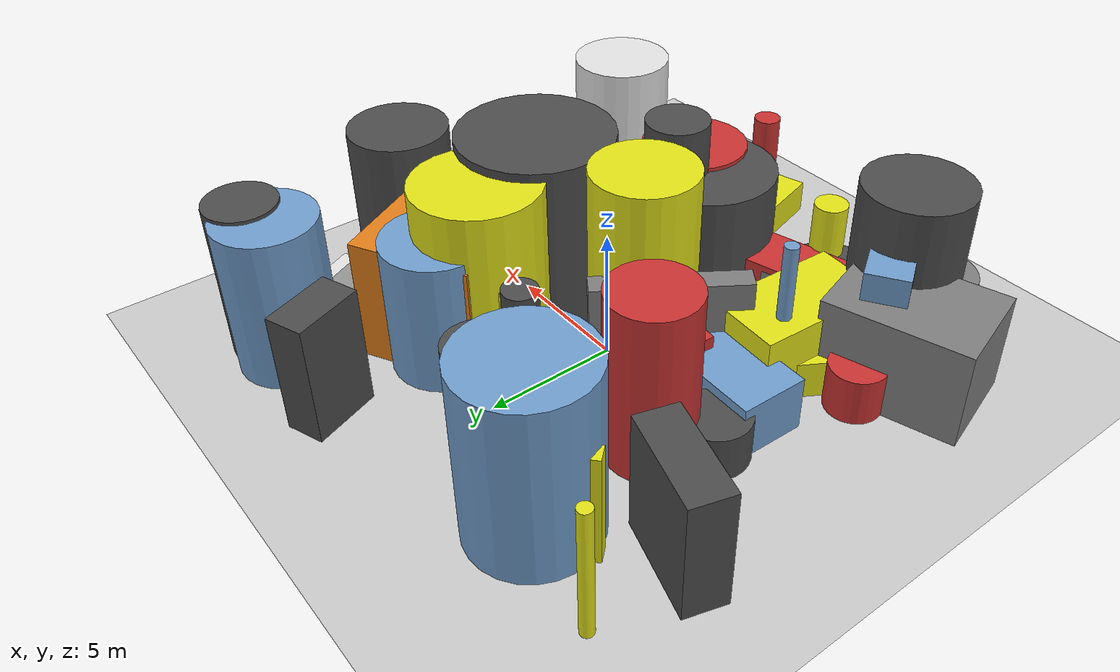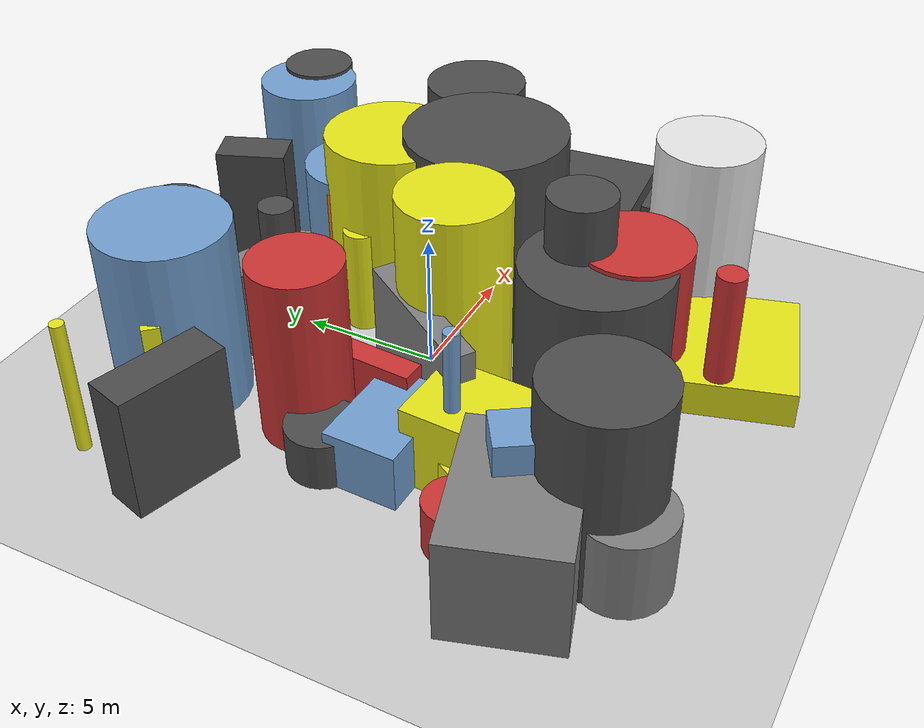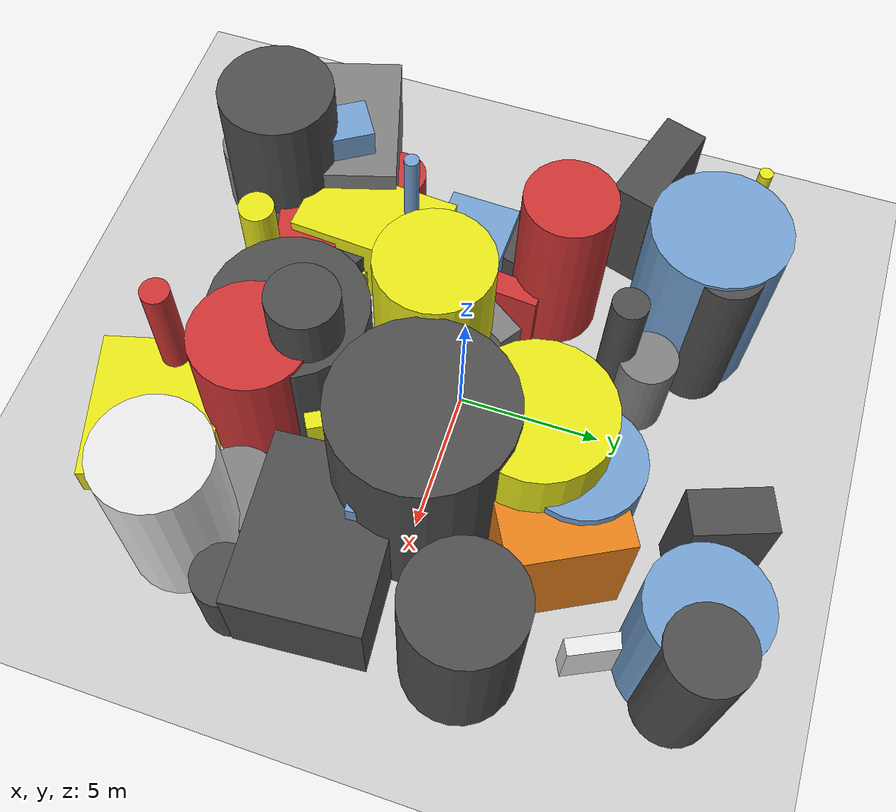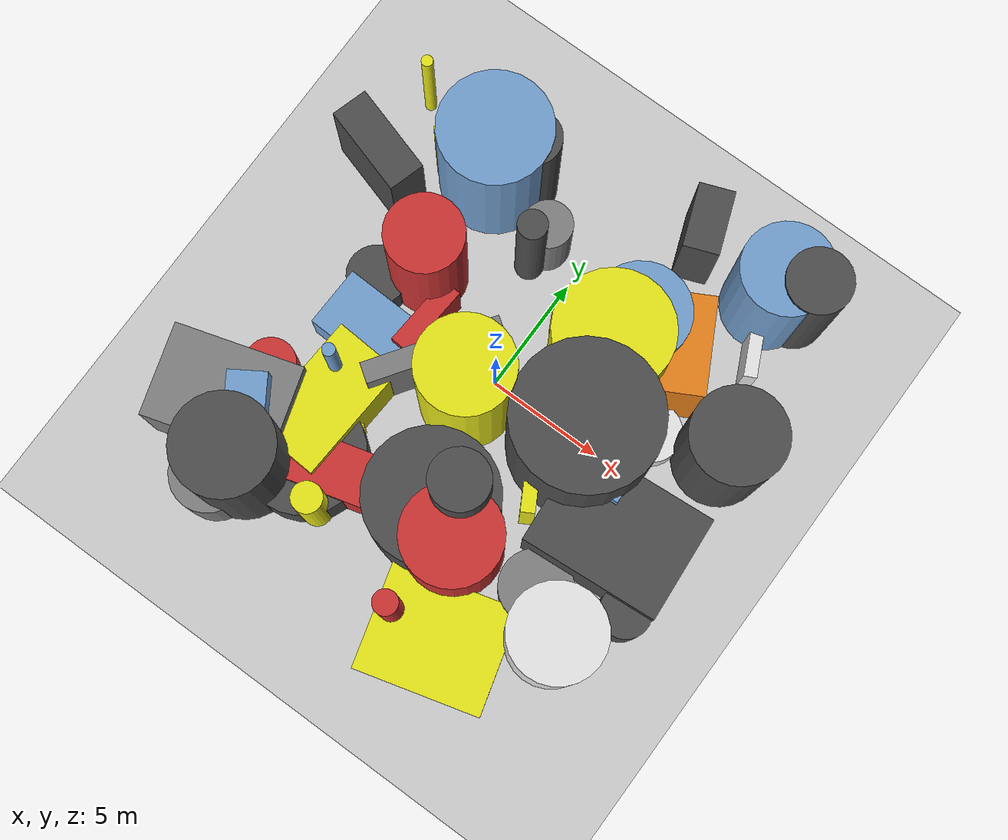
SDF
<?xml version='1.0'?>
<sdf version='1.6'>
  <world name='default'>
    <!-- Sun light -->
    <light name='sun' type='directional'>
      <cast_shadows>1</cast_shadows>
      <pose>0 0 10 0 0 0</pose>
      <diffuse>0.8 0.8 0.8 1</diffuse>
      <specular>0.2 0.2 0.2 1</specular>
      <attenuation>
        <range>1000</range>
        <constant>0.9</constant>
        <linear>0.01</linear>
        <quadratic>0.001</quadratic>
      </attenuation>
      <direction>-0.5 0.1 -0.9</direction>
    </light>

    <!-- Ground plane -->
    <model name='ground_plane'>
      <static>1</static>
      <link name='link'>
        <collision name='collision'>
          <geometry>
            <plane>
              <normal>0 0 1</normal>
              <size>100 100</size>
            </plane>
          </geometry>
          <surface>
            <contact>
              <collide_bitmask>65535</collide_bitmask>
              <ode/>
            </contact>
            <friction>
              <ode>
                <mu>100</mu>
                <mu2>50</mu2>
              </ode>
              <torsional><ode/></torsional>
            </friction>
            <bounce/>
          </surface>
          <max_contacts>10</max_contacts>
        </collision>
        <visual name='visual'>
          <cast_shadows>0</cast_shadows>
          <geometry>
            <plane>
              <normal>0 0 1</normal>
              <size>100 100</size>
            </plane>
          </geometry>
          <material>
            <script>
              <uri>file://media/materials/scripts/gazebo.material</uri>
              <n>Gazebo/Grey</n>
            </script>
          </material>
        </visual>
      </link>
    </model>

    <!-- Environment -->
    <magnetic_field>6e-06 2.3e-05 -4.2e-05</magnetic_field>
    <atmosphere type='adiabatic'/>
    <physics name='default_physics' default='0' type='ode'>
      <gravity>0 0 -9.8</gravity>
      <max_step_size>0.004</max_step_size>
      <real_time_factor>1</real_time_factor>
      <real_time_update_rate>250</real_time_update_rate>
    </physics>
    <scene>
      <ambient>0.4 0.4 0.4 1</ambient>
      <background>0.7 0.7 0.7 1</background>
      <shadows>1</shadows>
    </scene>
    <wind/>
    <spherical_coordinates>
      <surface_model>EARTH_WGS84</surface_model>
      <latitude_deg>0</latitude_deg>
      <longitude_deg>0</longitude_deg>
      <elevation>0</elevation>
      <heading_deg>0</heading_deg>
    </spherical_coordinates>

    <!-- ============ OBSTACLES (48) ============ -->
    <model name='obs_00'>
      <static>1</static>
      <link name='link'>
        <visual name='visual'>
          <geometry>
            <cylinder>
              <radius>1.9132</radius>
              <length>6.3601</length>
            </cylinder>
          </geometry>
          <material>
            <script>
              <n>Gazebo/DarkGrey</n>
              <uri>file://media/materials/scripts/gazebo.material</uri>
            </script>
            <ambient>0.3 0.3 0.3 1</ambient>
          </material>
        </visual>
        <collision name='collision'>
          <geometry>
            <cylinder>
              <radius>1.9132</radius>
              <length>6.3601</length>
            </cylinder>
          </geometry>
          <max_contacts>10</max_contacts>
          <surface>
            <contact><ode/></contact>
            <bounce/>
            <friction>
              <ode><mu>1</mu><mu2>1</mu2></ode>
              <torsional><ode/></torsional>
            </friction>
          </surface>
        </collision>
      </link>
      <pose>9.0717 2.7719 3.1800 0 0 1.2000</pose>
    </model>

    <model name='obs_01'>
      <static>1</static>
      <link name='link'>
        <visual name='visual'>
          <geometry>
            <cylinder>
              <radius>0.9991</radius>
              <length>3.4401</length>
            </cylinder>
          </geometry>
          <material>
            <script>
              <n>Gazebo/Grey</n>
              <uri>file://media/materials/scripts/gazebo.material</uri>
            </script>
            <ambient>0.5 0.5 0.5 1</ambient>
          </material>
        </visual>
        <collision name='collision'>
          <geometry>
            <cylinder>
              <radius>0.9991</radius>
              <length>3.4401</length>
            </cylinder>
          </geometry>
          <max_contacts>10</max_contacts>
          <surface>
            <contact><ode/></contact>
            <bounce/>
            <friction>
              <ode><mu>1</mu><mu2>1</mu2></ode>
              <torsional><ode/></torsional>
            </friction>
          </surface>
        </collision>
      </link>
      <pose>-1.7098 5.8542 1.7201 0 0 2.5389</pose>
    </model>

    <model name='obs_02'>
      <static>1</static>
      <link name='link'>
        <visual name='visual'>
          <geometry>
            <cylinder>
              <radius>1.9798</radius>
              <length>5.1851</length>
            </cylinder>
          </geometry>
          <material>
            <script>
              <n>Gazebo/Blue</n>
              <uri>file://media/materials/scripts/gazebo.material</uri>
            </script>
            <ambient>0.447 0.624 0.812 1</ambient>
          </material>
        </visual>
        <collision name='collision'>
          <geometry>
            <cylinder>
              <radius>1.9798</radius>
              <length>5.1851</length>
            </cylinder>
          </geometry>
          <max_contacts>10</max_contacts>
          <surface>
            <contact><ode/></contact>
            <bounce/>
            <friction>
              <ode><mu>1</mu><mu2>1</mu2></ode>
              <torsional><ode/></torsional>
            </friction>
          </surface>
        </collision>
      </link>
      <pose>3.3883 4.7418 2.5925 0 0 0.7329</pose>
    </model>

    <model name='obs_03'>
      <static>1</static>
      <link name='link'>
        <visual name='visual'>
          <geometry>
            <cylinder>
              <radius>2.6751</radius>
              <length>5.1760</length>
            </cylinder>
          </geometry>
          <material>
            <script>
              <n>Gazebo/DarkGrey</n>
              <uri>file://media/materials/scripts/gazebo.material</uri>
            </script>
            <ambient>0.3 0.3 0.3 1</ambient>
          </material>
        </visual>
        <collision name='collision'>
          <geometry>
            <cylinder>
              <radius>2.6751</radius>
              <length>5.1760</length>
            </cylinder>
          </geometry>
          <max_contacts>10</max_contacts>
          <surface>
            <contact><ode/></contact>
            <bounce/>
            <friction>
              <ode><mu>1</mu><mu2>1</mu2></ode>
              <torsional><ode/></torsional>
            </friction>
          </surface>
        </collision>
      </link>
      <pose>1.1378 -5.6228 2.5880 0 0 2.2839</pose>
    </model>

    <model name='obs_04'>
      <static>1</static>
      <link name='link'>
        <visual name='visual'>
          <geometry>
            <cylinder>
              <radius>2.2961</radius>
              <length>6.7116</length>
            </cylinder>
          </geometry>
          <material>
            <script>
              <n>Gazebo/Blue</n>
              <uri>file://media/materials/scripts/gazebo.material</uri>
            </script>
            <ambient>0.447 0.624 0.812 1</ambient>
          </material>
        </visual>
        <collision name='collision'>
          <geometry>
            <cylinder>
              <radius>2.2961</radius>
              <length>6.7116</length>
            </cylinder>
          </geometry>
          <max_contacts>10</max_contacts>
          <surface>
            <contact><ode/></contact>
            <bounce/>
            <friction>
              <ode><mu>1</mu><mu2>1</mu2></ode>
              <torsional><ode/></torsional>
            </friction>
          </surface>
        </collision>
      </link>
      <pose>-5.0901 6.9072 3.3558 0 0 3.0854</pose>
    </model>

    <model name='obs_05'>
      <static>1</static>
      <link name='link'>
        <visual name='visual'>
          <geometry>
            <cylinder>
              <radius>2.0256</radius>
              <length>5.3318</length>
            </cylinder>
          </geometry>
          <material>
            <script>
              <n>Gazebo/Red</n>
              <uri>file://media/materials/scripts/gazebo.material</uri>
            </script>
            <ambient>0.8 0.2 0.2 1</ambient>
          </material>
        </visual>
        <collision name='collision'>
          <geometry>
            <cylinder>
              <radius>2.0256</radius>
              <length>5.3318</length>
            </cylinder>
          </geometry>
          <max_contacts>10</max_contacts>
          <surface>
            <contact><ode/></contact>
            <bounce/>
            <friction>
              <ode><mu>1</mu><mu2>1</mu2></ode>
              <torsional><ode/></torsional>
            </friction>
          </surface>
        </collision>
      </link>
      <pose>2.6268 -6.3592 2.6659 0 0 2.4939</pose>
    </model>

    <model name='obs_06'>
      <static>1</static>
      <link name='link'>
        <visual name='visual'>
          <geometry>
            <cylinder>
              <radius>1.0463</radius>
              <length>1.8014</length>
            </cylinder>
          </geometry>
          <material>
            <script>
              <n>Gazebo/Red</n>
              <uri>file://media/materials/scripts/gazebo.material</uri>
            </script>
            <ambient>0.8 0.2 0.2 1</ambient>
          </material>
        </visual>
        <collision name='collision'>
          <geometry>
            <cylinder>
              <radius>1.0463</radius>
              <length>1.8014</length>
            </cylinder>
          </geometry>
          <max_contacts>10</max_contacts>
          <surface>
            <contact><ode/></contact>
            <bounce/>
            <friction>
              <ode><mu>1</mu><mu2>1</mu2></ode>
              <torsional><ode/></torsional>
            </friction>
          </surface>
        </collision>
      </link>
      <pose>-7.5041 -4.8734 0.9007 0 0 2.7170</pose>
    </model>

    <model name='obs_07'>
      <static>1</static>
      <link name='link'>
        <visual name='visual'>
          <geometry>
            <box>
              <size>2.7126 0.8065 4.6702</size>
            </box>
          </geometry>
          <material>
            <script>
              <n>Gazebo/Blue</n>
              <uri>file://media/materials/scripts/gazebo.material</uri>
            </script>
            <ambient>0.447 0.624 0.812 1</ambient>
          </material>
        </visual>
        <collision name='collision'>
          <geometry>
            <box>
              <size>2.7126 0.8065 4.6702</size>
            </box>
          </geometry>
          <max_contacts>10</max_contacts>
          <surface>
            <contact><ode/></contact>
            <bounce/>
            <friction>
              <ode><mu>1</mu><mu2>1</mu2></ode>
              <torsional><ode/></torsional>
            </friction>
          </surface>
        </collision>
      </link>
      <pose>5.3183 0.3067 2.3351 0 0 1.6359</pose>
    </model>

    <model name='obs_08'>
      <static>1</static>
      <link name='link'>
        <visual name='visual'>
          <geometry>
            <box>
              <size>4.4605 3.2454 1.4618</size>
            </box>
          </geometry>
          <material>
            <script>
              <n>Gazebo/Yellow</n>
              <uri>file://media/materials/scripts/gazebo.material</uri>
            </script>
            <ambient>0.9 0.9 0.1 1</ambient>
          </material>
        </visual>
        <collision name='collision'>
          <geometry>
            <box>
              <size>4.4605 3.2454 1.4618</size>
            </box>
          </geometry>
          <max_contacts>10</max_contacts>
          <surface>
            <contact><ode/></contact>
            <bounce/>
            <friction>
              <ode><mu>1</mu><mu2>1</mu2></ode>
              <torsional><ode/></torsional>
            </friction>
          </surface>
        </collision>
      </link>
      <pose>-5.5087 -5.7768 0.7309 0 0 1.0288</pose>
    </model>

    <model name='obs_09'>
      <static>1</static>
      <link name='link'>
        <visual name='visual'>
          <geometry>
            <cylinder>
              <radius>1.2100</radius>
              <length>7.2062</length>
            </cylinder>
          </geometry>
          <material>
            <script>
              <n>Gazebo/DarkGrey</n>
              <uri>file://media/materials/scripts/gazebo.material</uri>
            </script>
            <ambient>0.3 0.3 0.3 1</ambient>
          </material>
        </visual>
        <collision name='collision'>
          <geometry>
            <cylinder>
              <radius>1.2100</radius>
              <length>7.2062</length>
            </cylinder>
          </geometry>
          <max_contacts>10</max_contacts>
          <surface>
            <contact><ode/></contact>
            <bounce/>
            <friction>
              <ode><mu>1</mu><mu2>1</mu2></ode>
              <torsional><ode/></torsional>
            </friction>
          </surface>
        </collision>
      </link>
      <pose>1.8151 -4.7097 3.6031 0 0 0.0002</pose>
    </model>

    <model name='obs_10'>
      <static>1</static>
      <link name='link'>
        <visual name='visual'>
          <geometry>
            <box>
              <size>5.3669 2.1381 2.5916</size>
            </box>
          </geometry>
          <material>
            <script>
              <n>Gazebo/Red</n>
              <uri>file://media/materials/scripts/gazebo.material</uri>
            </script>
            <ambient>0.8 0.2 0.2 1</ambient>
          </material>
        </visual>
        <collision name='collision'>
          <geometry>
            <box>
              <size>5.3669 2.1381 2.5916</size>
            </box>
          </geometry>
          <max_contacts>10</max_contacts>
          <surface>
            <contact><ode/></contact>
            <bounce/>
            <friction>
              <ode><mu>1</mu><mu2>1</mu2></ode>
              <torsional><ode/></torsional>
            </friction>
          </surface>
        </collision>
      </link>
      <pose>-2.1734 -6.6176 1.2958 0 0 0.2593</pose>
    </model>

    <model name='obs_11'>
      <static>1</static>
      <link name='link'>
        <visual name='visual'>
          <geometry>
            <cylinder>
              <radius>2.9413</radius>
              <length>7.2574</length>
            </cylinder>
          </geometry>
          <material>
            <script>
              <n>Gazebo/DarkGrey</n>
              <uri>file://media/materials/scripts/gazebo.material</uri>
            </script>
            <ambient>0.3 0.3 0.3 1</ambient>
          </material>
        </visual>
        <collision name='collision'>
          <geometry>
            <cylinder>
              <radius>2.9413</radius>
              <length>7.2574</length>
            </cylinder>
          </geometry>
          <max_contacts>10</max_contacts>
          <surface>
            <contact><ode/></contact>
            <bounce/>
            <friction>
              <ode><mu>1</mu><mu2>1</mu2></ode>
              <torsional><ode/></torsional>
            </friction>
          </surface>
        </collision>
      </link>
      <pose>4.1713 -0.0751 3.6287 0 0 2.4630</pose>
    </model>

    <model name='obs_12'>
      <static>1</static>
      <link name='link'>
        <visual name='visual'>
          <geometry>
            <cylinder>
              <radius>0.2415</radius>
              <length>5.0220</length>
            </cylinder>
          </geometry>
          <material>
            <script>
              <n>Gazebo/Yellow</n>
              <uri>file://media/materials/scripts/gazebo.material</uri>
            </script>
            <ambient>0.9 0.9 0.1 1</ambient>
          </material>
        </visual>
        <collision name='collision'>
          <geometry>
            <cylinder>
              <radius>0.2415</radius>
              <length>5.0220</length>
            </cylinder>
          </geometry>
          <max_contacts>10</max_contacts>
          <surface>
            <contact><ode/></contact>
            <bounce/>
            <friction>
              <ode><mu>1</mu><mu2>1</mu2></ode>
              <torsional><ode/></torsional>
            </friction>
          </surface>
        </collision>
      </link>
      <pose>-9.1711 7.9914 2.5110 0 0 2.2519</pose>
    </model>

    <model name='obs_13'>
      <static>1</static>
      <link name='link'>
        <visual name='visual'>
          <geometry>
            <cylinder>
              <radius>1.8679</radius>
              <length>5.9901</length>
            </cylinder>
          </geometry>
          <material>
            <script>
              <n>Gazebo/Blue</n>
              <uri>file://media/materials/scripts/gazebo.material</uri>
            </script>
            <ambient>0.447 0.624 0.812 1</ambient>
          </material>
        </visual>
        <collision name='collision'>
          <geometry>
            <cylinder>
              <radius>1.8679</radius>
              <length>5.9901</length>
            </cylinder>
          </geometry>
          <max_contacts>10</max_contacts>
          <surface>
            <contact><ode/></contact>
            <bounce/>
            <friction>
              <ode><mu>1</mu><mu2>1</mu2></ode>
              <torsional><ode/></torsional>
            </friction>
          </surface>
        </collision>
      </link>
      <pose>6.9541 9.1423 2.9950 0 0 2.7705</pose>
    </model>

    <model name='obs_14'>
      <static>1</static>
      <link name='link'>
        <visual name='visual'>
          <geometry>
            <cylinder>
              <radius>1.9580</radius>
              <length>7.5261</length>
            </cylinder>
          </geometry>
          <material>
            <script>
              <n>Gazebo/Yellow</n>
              <uri>file://media/materials/scripts/gazebo.material</uri>
            </script>
            <ambient>0.9 0.9 0.1 1</ambient>
          </material>
        </visual>
        <collision name='collision'>
          <geometry>
            <cylinder>
              <radius>1.9580</radius>
              <length>7.5261</length>
            </cylinder>
          </geometry>
          <max_contacts>10</max_contacts>
          <surface>
            <contact><ode/></contact>
            <bounce/>
            <friction>
              <ode><mu>1</mu><mu2>1</mu2></ode>
              <torsional><ode/></torsional>
            </friction>
          </surface>
        </collision>
      </link>
      <pose>-0.4944 -1.2290 3.7630 0 0 0.6281</pose>
    </model>

    <model name='obs_15'>
      <static>1</static>
      <link name='link'>
        <visual name='visual'>
          <geometry>
            <cylinder>
              <radius>0.6340</radius>
              <length>4.3928</length>
            </cylinder>
          </geometry>
          <material>
            <script>
              <n>Gazebo/Yellow</n>
              <uri>file://media/materials/scripts/gazebo.material</uri>
            </script>
            <ambient>0.9 0.9 0.1 1</ambient>
          </material>
        </visual>
        <collision name='collision'>
          <geometry>
            <cylinder>
              <radius>0.6340</radius>
              <length>4.3928</length>
            </cylinder>
          </geometry>
          <max_contacts>10</max_contacts>
          <surface>
            <contact><ode/></contact>
            <bounce/>
            <friction>
              <ode><mu>1</mu><mu2>1</mu2></ode>
              <torsional><ode/></torsional>
            </friction>
          </surface>
        </collision>
      </link>
      <pose>-2.6823 -8.3920 2.1964 0 0 2.5491</pose>
    </model>

    <model name='obs_16'>
      <static>1</static>
      <link name='link'>
        <visual name='visual'>
          <geometry>
            <cylinder>
              <radius>1.0366</radius>
              <length>3.0106</length>
            </cylinder>
          </geometry>
          <material>
            <script>
              <n>Gazebo/DarkGrey</n>
              <uri>file://media/materials/scripts/gazebo.material</uri>
            </script>
            <ambient>0.3 0.3 0.3 1</ambient>
          </material>
        </visual>
        <collision name='collision'>
          <geometry>
            <cylinder>
              <radius>1.0366</radius>
              <length>3.0106</length>
            </cylinder>
          </geometry>
          <max_contacts>10</max_contacts>
          <surface>
            <contact><ode/></contact>
            <bounce/>
            <friction>
              <ode><mu>1</mu><mu2>1</mu2></ode>
              <torsional><ode/></torsional>
            </friction>
          </surface>
        </collision>
      </link>
      <pose>9.5298 -4.6609 1.5053 0 0 2.6575</pose>
    </model>

    <model name='obs_17'>
      <static>1</static>
      <link name='link'>
        <visual name='visual'>
          <geometry>
            <box>
              <size>3.7772 2.5897 2.1017</size>
            </box>
          </geometry>
          <material>
            <script>
              <n>Gazebo/Blue</n>
              <uri>file://media/materials/scripts/gazebo.material</uri>
            </script>
            <ambient>0.447 0.624 0.812 1</ambient>
          </material>
        </visual>
        <collision name='collision'>
          <geometry>
            <box>
              <size>3.7772 2.5897 2.1017</size>
            </box>
          </geometry>
          <max_contacts>10</max_contacts>
          <surface>
            <contact><ode/></contact>
            <bounce/>
            <friction>
              <ode><mu>1</mu><mu2>1</mu2></ode>
              <torsional><ode/></torsional>
            </friction>
          </surface>
        </collision>
      </link>
      <pose>-5.2185 -1.3576 1.0509 0 0 3.1091</pose>
    </model>

    <model name='obs_18'>
      <static>1</static>
      <link name='link'>
        <visual name='visual'>
          <geometry>
            <cylinder>
              <radius>0.6025</radius>
              <length>6.1146</length>
            </cylinder>
          </geometry>
          <material>
            <script>
              <n>Gazebo/DarkGrey</n>
              <uri>file://media/materials/scripts/gazebo.material</uri>
            </script>
            <ambient>0.3 0.3 0.3 1</ambient>
          </material>
        </visual>
        <collision name='collision'>
          <geometry>
            <cylinder>
              <radius>0.6025</radius>
              <length>6.1146</length>
            </cylinder>
          </geometry>
          <max_contacts>10</max_contacts>
          <surface>
            <contact><ode/></contact>
            <bounce/>
            <friction>
              <ode><mu>1</mu><mu2>1</mu2></ode>
              <torsional><ode/></torsional>
            </friction>
          </surface>
        </collision>
      </link>
      <pose>-1.8068 4.8117 3.0573 0 0 0.2689</pose>
    </model>

    <model name='obs_19'>
      <static>1</static>
      <link name='link'>
        <visual name='visual'>
          <geometry>
            <cylinder>
              <radius>0.2663</radius>
              <length>5.9310</length>
            </cylinder>
          </geometry>
          <material>
            <script>
              <n>Gazebo/Blue</n>
              <uri>file://media/materials/scripts/gazebo.material</uri>
            </script>
            <ambient>0.447 0.624 0.812 1</ambient>
          </material>
        </visual>
        <collision name='collision'>
          <geometry>
            <cylinder>
              <radius>0.2663</radius>
              <length>5.9310</length>
            </cylinder>
          </geometry>
          <max_contacts>10</max_contacts>
          <surface>
            <contact><ode/></contact>
            <bounce/>
            <friction>
              <ode><mu>1</mu><mu2>1</mu2></ode>
              <torsional><ode/></torsional>
            </friction>
          </surface>
        </collision>
      </link>
      <pose>-5.1412 -3.5510 2.9655 0 0 2.9904</pose>
    </model>

    <model name='obs_20'>
      <static>1</static>
      <link name='link'>
        <visual name='visual'>
          <geometry>
            <cylinder>
              <radius>1.5517</radius>
              <length>2.8271</length>
            </cylinder>
          </geometry>
          <material>
            <script>
              <n>Gazebo/Grey</n>
              <uri>file://media/materials/scripts/gazebo.material</uri>
            </script>
            <ambient>0.5 0.5 0.5 1</ambient>
          </material>
        </visual>
        <collision name='collision'>
          <geometry>
            <cylinder>
              <radius>1.5517</radius>
              <length>2.8271</length>
            </cylinder>
          </geometry>
          <max_contacts>10</max_contacts>
          <surface>
            <contact><ode/></contact>
            <bounce/>
            <friction>
              <ode><mu>1</mu><mu2>1</mu2></ode>
              <torsional><ode/></torsional>
            </friction>
          </surface>
        </collision>
      </link>
      <pose>-6.5733 -9.8452 1.4136 0 0 0.5613</pose>
    </model>

    <model name='obs_21'>
      <static>1</static>
      <link name='link'>
        <visual name='visual'>
          <geometry>
            <cylinder>
              <radius>0.6595</radius>
              <length>3.9007</length>
            </cylinder>
          </geometry>
          <material>
            <script>
              <n>Gazebo/Grey</n>
              <uri>file://media/materials/scripts/gazebo.material</uri>
            </script>
            <ambient>0.5 0.5 0.5 1</ambient>
          </material>
        </visual>
        <collision name='collision'>
          <geometry>
            <cylinder>
              <radius>0.6595</radius>
              <length>3.9007</length>
            </cylinder>
          </geometry>
          <max_contacts>10</max_contacts>
          <surface>
            <contact><ode/></contact>
            <bounce/>
            <friction>
              <ode><mu>1</mu><mu2>1</mu2></ode>
              <torsional><ode/></torsional>
            </friction>
          </surface>
        </collision>
      </link>
      <pose>1.5932 -3.5807 1.9503 0 0 1.8135</pose>
    </model>

    <model name='obs_22'>
      <static>1</static>
      <link name='link'>
        <visual name='visual'>
          <geometry>
            <box>
              <size>1.1812 0.5741 4.0324</size>
            </box>
          </geometry>
          <material>
            <script>
              <n>Gazebo/Yellow</n>
              <uri>file://media/materials/scripts/gazebo.material</uri>
            </script>
            <ambient>0.9 0.9 0.1 1</ambient>
          </material>
        </visual>
        <collision name='collision'>
          <geometry>
            <box>
              <size>1.1812 0.5741 4.0324</size>
            </box>
          </geometry>
          <max_contacts>10</max_contacts>
          <surface>
            <contact><ode/></contact>
            <bounce/>
            <friction>
              <ode><mu>1</mu><mu2>1</mu2></ode>
              <torsional><ode/></torsional>
            </friction>
          </surface>
        </collision>
      </link>
      <pose>4.0613 -3.3894 2.0162 0 0 2.0787</pose>
    </model>

    <model name='obs_23'>
      <static>1</static>
      <link name='link'>
        <visual name='visual'>
          <geometry>
            <box>
              <size>4.4465 5.3327 1.3344</size>
            </box>
          </geometry>
          <material>
            <script>
              <n>Gazebo/Yellow</n>
              <uri>file://media/materials/scripts/gazebo.material</uri>
            </script>
            <ambient>0.9 0.9 0.1 1</ambient>
          </material>
        </visual>
        <collision name='collision'>
          <geometry>
            <box>
              <size>4.4465 5.3327 1.3344</size>
            </box>
          </geometry>
          <max_contacts>10</max_contacts>
          <surface>
            <contact><ode/></contact>
            <bounce/>
            <friction>
              <ode><mu>1</mu><mu2>1</mu2></ode>
              <torsional><ode/></torsional>
            </friction>
          </surface>
        </collision>
      </link>
      <pose>4.2442 -9.7018 0.6672 0 0 1.8372</pose>
    </model>

    <model name='obs_24'>
      <static>1</static>
      <link name='link'>
        <visual name='visual'>
          <geometry>
            <box>
              <size>2.9506 5.2269 2.9982</size>
            </box>
          </geometry>
          <material>
            <script>
              <n>Gazebo/Yellow</n>
              <uri>file://media/materials/scripts/gazebo.material</uri>
            </script>
            <ambient>0.9 0.9 0.1 1</ambient>
          </material>
        </visual>
        <collision name='collision'>
          <geometry>
            <box>
              <size>2.9506 5.2269 2.9982</size>
            </box>
          </geometry>
          <max_contacts>10</max_contacts>
          <surface>
            <contact><ode/></contact>
            <bounce/>
            <friction>
              <ode><mu>1</mu><mu2>1</mu2></ode>
              <torsional><ode/></torsional>
            </friction>
          </surface>
        </collision>
      </link>
      <pose>-4.6361 -4.8037 1.4991 0 0 3.0776</pose>
    </model>

    <model name='obs_25'>
      <static>1</static>
      <link name='link'>
        <visual name='visual'>
          <geometry>
            <cylinder>
              <radius>1.3275</radius>
              <length>6.1219</length>
            </cylinder>
          </geometry>
          <material>
            <script>
              <n>Gazebo/DarkGrey</n>
              <uri>file://media/materials/scripts/gazebo.material</uri>
            </script>
            <ambient>0.3 0.3 0.3 1</ambient>
          </material>
        </visual>
        <collision name='collision'>
          <geometry>
            <cylinder>
              <radius>1.3275</radius>
              <length>6.1219</length>
            </cylinder>
          </geometry>
          <max_contacts>10</max_contacts>
          <surface>
            <contact><ode/></contact>
            <bounce/>
            <friction>
              <ode><mu>1</mu><mu2>1</mu2></ode>
              <torsional><ode/></torsional>
            </friction>
          </surface>
        </collision>
      </link>
      <pose>8.1709 9.4195 3.0610 0 0 1.5588</pose>
    </model>

    <model name='obs_26'>
      <static>1</static>
      <link name='link'>
        <visual name='visual'>
          <geometry>
            <cylinder>
              <radius>1.2490</radius>
              <length>1.7283</length>
            </cylinder>
          </geometry>
          <material>
            <script>
              <n>Gazebo/DarkGrey</n>
              <uri>file://media/materials/scripts/gazebo.material</uri>
            </script>
            <ambient>0.3 0.3 0.3 1</ambient>
          </material>
        </visual>
        <collision name='collision'>
          <geometry>
            <cylinder>
              <radius>1.2490</radius>
              <length>1.7283</length>
            </cylinder>
          </geometry>
          <max_contacts>10</max_contacts>
          <surface>
            <contact><ode/></contact>
            <bounce/>
            <friction>
              <ode><mu>1</mu><mu2>1</mu2></ode>
              <torsional><ode/></torsional>
            </friction>
          </surface>
        </collision>
      </link>
      <pose>-6.2671 0.5123 0.8642 0 0 0.4052</pose>
    </model>

    <model name='obs_27'>
      <static>1</static>
      <link name='link'>
        <visual name='visual'>
          <geometry>
            <box>
              <size>1.8119 3.3944 4.3080</size>
            </box>
          </geometry>
          <material>
            <script>
              <n>Gazebo/Blue</n>
              <uri>file://media/materials/scripts/gazebo.material</uri>
            </script>
            <ambient>0.447 0.624 0.812 1</ambient>
          </material>
        </visual>
        <collision name='collision'>
          <geometry>
            <box>
              <size>1.8119 3.3944 4.3080</size>
            </box>
          </geometry>
          <max_contacts>10</max_contacts>
          <surface>
            <contact><ode/></contact>
            <bounce/>
            <friction>
              <ode><mu>1</mu><mu2>1</mu2></ode>
              <torsional><ode/></torsional>
            </friction>
          </surface>
        </collision>
      </link>
      <pose>5.1251 -0.8376 2.1540 0 0 1.6357</pose>
    </model>

    <model name='obs_28'>
      <static>1</static>
      <link name='link'>
        <visual name='visual'>
          <geometry>
            <box>
              <size>1.5539 3.8230 4.5122</size>
            </box>
          </geometry>
          <material>
            <script>
              <n>Gazebo/DarkGrey</n>
              <uri>file://media/materials/scripts/gazebo.material</uri>
            </script>
            <ambient>0.3 0.3 0.3 1</ambient>
          </material>
        </visual>
        <collision name='collision'>
          <geometry>
            <box>
              <size>1.5539 3.8230 4.5122</size>
            </box>
          </geometry>
          <max_contacts>10</max_contacts>
          <surface>
            <contact><ode/></contact>
            <bounce/>
            <friction>
              <ode><mu>1</mu><mu2>1</mu2></ode>
              <torsional><ode/></torsional>
            </friction>
          </surface>
        </collision>
      </link>
      <pose>-8.9239 4.4053 2.2561 0 0 1.2772</pose>
    </model>

    <model name='obs_29'>
      <static>1</static>
      <link name='link'>
        <visual name='visual'>
          <geometry>
            <cylinder>
              <radius>0.5095</radius>
              <length>5.4435</length>
            </cylinder>
          </geometry>
          <material>
            <script>
              <n>Gazebo/Red</n>
              <uri>file://media/materials/scripts/gazebo.material</uri>
            </script>
            <ambient>0.8 0.2 0.2 1</ambient>
          </material>
        </visual>
        <collision name='collision'>
          <geometry>
            <cylinder>
              <radius>0.5095</radius>
              <length>5.4435</length>
            </cylinder>
          </geometry>
          <max_contacts>10</max_contacts>
          <surface>
            <contact><ode/></contact>
            <bounce/>
            <friction>
              <ode><mu>1</mu><mu2>1</mu2></ode>
              <torsional><ode/></torsional>
            </friction>
          </surface>
        </collision>
      </link>
      <pose>2.1509 -9.8046 2.7217 0 0 0.5841</pose>
    </model>

    <model name='obs_30'>
      <static>1</static>
      <link name='link'>
        <visual name='visual'>
          <geometry>
            <cylinder>
              <radius>1.5078</radius>
              <length>1.4743</length>
            </cylinder>
          </geometry>
          <material>
            <script>
              <n>Gazebo/Grey</n>
              <uri>file://media/materials/scripts/gazebo.material</uri>
            </script>
            <ambient>0.5 0.5 0.5 1</ambient>
          </material>
        </visual>
        <collision name='collision'>
          <geometry>
            <cylinder>
              <radius>1.5078</radius>
              <length>1.4743</length>
            </cylinder>
          </geometry>
          <max_contacts>10</max_contacts>
          <surface>
            <contact><ode/></contact>
            <bounce/>
            <friction>
              <ode><mu>1</mu><mu2>1</mu2></ode>
              <torsional><ode/></torsional>
            </friction>
          </surface>
        </collision>
      </link>
      <pose>6.1876 -5.7831 0.7371 0 0 1.4358</pose>
    </model>

    <model name='obs_31'>
      <static>1</static>
      <link name='link'>
        <visual name='visual'>
          <geometry>
            <cylinder>
              <radius>0.6305</radius>
              <length>3.9698</length>
            </cylinder>
          </geometry>
          <material>
            <script>
              <n>Gazebo/Yellow</n>
              <uri>file://media/materials/scripts/gazebo.material</uri>
            </script>
            <ambient>0.9 0.9 0.1 1</ambient>
          </material>
        </visual>
        <collision name='collision'>
          <geometry>
            <cylinder>
              <radius>0.6305</radius>
              <length>3.9698</length>
            </cylinder>
          </geometry>
          <max_contacts>10</max_contacts>
          <surface>
            <contact><ode/></contact>
            <bounce/>
            <friction>
              <ode><mu>1</mu><mu2>1</mu2></ode>
              <torsional><ode/></torsional>
            </friction>
          </surface>
        </collision>
      </link>
      <pose>1.0326 3.3368 1.9849 0 0 0.6301</pose>
    </model>

    <model name='obs_32'>
      <static>1</static>
      <link name='link'>
        <visual name='visual'>
          <geometry>
            <cylinder>
              <radius>1.1323</radius>
              <length>6.5852</length>
            </cylinder>
          </geometry>
          <material>
            <script>
              <n>Gazebo/DarkGrey</n>
              <uri>file://media/materials/scripts/gazebo.material</uri>
            </script>
            <ambient>0.3 0.3 0.3 1</ambient>
          </material>
        </visual>
        <collision name='collision'>
          <geometry>
            <cylinder>
              <radius>1.1323</radius>
              <length>6.5852</length>
            </cylinder>
          </geometry>
          <max_contacts>10</max_contacts>
          <surface>
            <contact><ode/></contact>
            <bounce/>
            <friction>
              <ode><mu>1</mu><mu2>1</mu2></ode>
              <torsional><ode/></torsional>
            </friction>
          </surface>
        </collision>
      </link>
      <pose>-3.7156 7.4836 3.2926 0 0 2.5439</pose>
    </model>

    <model name='obs_33'>
      <static>1</static>
      <link name='link'>
        <visual name='visual'>
          <geometry>
            <box>
              <size>2.6277 1.4718 4.6311</size>
            </box>
          </geometry>
          <material>
            <script>
              <n>Gazebo/DarkGrey</n>
              <uri>file://media/materials/scripts/gazebo.material</uri>
            </script>
            <ambient>0.3 0.3 0.3 1</ambient>
          </material>
        </visual>
        <collision name='collision'>
          <geometry>
            <box>
              <size>2.6277 1.4718 4.6311</size>
            </box>
          </geometry>
          <max_contacts>10</max_contacts>
          <surface>
            <contact><ode/></contact>
            <bounce/>
            <friction>
              <ode><mu>1</mu><mu2>1</mu2></ode>
              <torsional><ode/></torsional>
            </friction>
          </surface>
        </collision>
      </link>
      <pose>3.3371 9.4037 2.3156 0 0 1.9302</pose>
    </model>

    <model name='obs_34'>
      <static>1</static>
      <link name='link'>
        <visual name='visual'>
          <geometry>
            <cylinder>
              <radius>2.5087</radius>
              <length>2.3412</length>
            </cylinder>
          </geometry>
          <material>
            <script>
              <n>Gazebo/DarkGrey</n>
              <uri>file://media/materials/scripts/gazebo.material</uri>
            </script>
            <ambient>0.3 0.3 0.3 1</ambient>
          </material>
        </visual>
        <collision name='collision'>
          <geometry>
            <cylinder>
              <radius>2.5087</radius>
              <length>2.3412</length>
            </cylinder>
          </geometry>
          <max_contacts>10</max_contacts>
          <surface>
            <contact><ode/></contact>
            <bounce/>
            <friction>
              <ode><mu>1</mu><mu2>1</mu2></ode>
              <torsional><ode/></torsional>
            </friction>
          </surface>
        </collision>
      </link>
      <pose>-4.1983 -6.9732 1.1706 0 0 1.0482</pose>
    </model>

    <model name='obs_35'>
      <static>1</static>
      <link name='link'>
        <visual name='visual'>
          <geometry>
            <cylinder>
              <radius>2.0316</radius>
              <length>6.6751</length>
            </cylinder>
          </geometry>
          <material>
            <script>
              <n>Gazebo/DarkGrey</n>
              <uri>file://media/materials/scripts/gazebo.material</uri>
            </script>
            <ambient>0.3 0.3 0.3 1</ambient>
          </material>
        </visual>
        <collision name='collision'>
          <geometry>
            <cylinder>
              <radius>2.0316</radius>
              <length>6.6751</length>
            </cylinder>
          </geometry>
          <max_contacts>10</max_contacts>
          <surface>
            <contact><ode/></contact>
            <bounce/>
            <friction>
              <ode><mu>1</mu><mu2>1</mu2></ode>
              <torsional><ode/></torsional>
            </friction>
          </surface>
        </collision>
      </link>
      <pose>-5.9920 -8.7555 3.3375 0 0 2.2175</pose>
    </model>

    <model name='obs_36'>
      <static>1</static>
      <link name='link'>
        <visual name='visual'>
          <geometry>
            <box>
              <size>3.1363 0.8579 2.5696</size>
            </box>
          </geometry>
          <material>
            <script>
              <n>Gazebo/Red</n>
              <uri>file://media/materials/scripts/gazebo.material</uri>
            </script>
            <ambient>0.8 0.2 0.2 1</ambient>
          </material>
        </visual>
        <collision name='collision'>
          <geometry>
            <box>
              <size>3.1363 0.8579 2.5696</size>
            </box>
          </geometry>
          <max_contacts>10</max_contacts>
          <surface>
            <contact><ode/></contact>
            <bounce/>
            <friction>
              <ode><mu>1</mu><mu2>1</mu2></ode>
              <torsional><ode/></torsional>
            </friction>
          </surface>
        </collision>
      </link>
      <pose>-3.5371 0.1767 1.2848 0 0 1.4976</pose>
    </model>

    <model name='obs_37'>
      <static>1</static>
      <link name='link'>
        <visual name='visual'>
          <geometry>
            <cylinder>
              <radius>2.3629</radius>
              <length>6.9245</length>
            </cylinder>
          </geometry>
          <material>
            <script>
              <n>Gazebo/Yellow</n>
              <uri>file://media/materials/scripts/gazebo.material</uri>
            </script>
            <ambient>0.9 0.9 0.1 1</ambient>
          </material>
        </visual>
        <collision name='collision'>
          <geometry>
            <cylinder>
              <radius>2.3629</radius>
              <length>6.9245</length>
            </cylinder>
          </geometry>
          <max_contacts>10</max_contacts>
          <surface>
            <contact><ode/></contact>
            <bounce/>
            <friction>
              <ode><mu>1</mu><mu2>1</mu2></ode>
              <torsional><ode/></torsional>
            </friction>
          </surface>
        </collision>
      </link>
      <pose>3.0829 3.1624 3.4623 0 0 1.3794</pose>
    </model>

    <model name='obs_38'>
      <static>1</static>
      <link name='link'>
        <visual name='visual'>
          <geometry>
            <box>
              <size>5.6696 0.8677 4.0648</size>
            </box>
          </geometry>
          <material>
            <script>
              <n>Gazebo/Grey</n>
              <uri>file://media/materials/scripts/gazebo.material</uri>
            </script>
            <ambient>0.5 0.5 0.5 1</ambient>
          </material>
        </visual>
        <collision name='collision'>
          <geometry>
            <box>
              <size>5.6696 0.8677 4.0648</size>
            </box>
          </geometry>
          <max_contacts>10</max_contacts>
          <surface>
            <contact><ode/></contact>
            <bounce/>
            <friction>
              <ode><mu>1</mu><mu2>1</mu2></ode>
              <torsional><ode/></torsional>
            </friction>
          </surface>
        </collision>
      </link>
      <pose>-2.2849 -0.9579 2.0324 0 0 0.9699</pose>
    </model>

    <model name='obs_39'>
      <static>1</static>
      <link name='link'>
        <visual name='visual'>
          <geometry>
            <box>
              <size>5.3413 3.8476 3.7491</size>
            </box>
          </geometry>
          <material>
            <script>
              <n>Gazebo/Grey</n>
              <uri>file://media/materials/scripts/gazebo.material</uri>
            </script>
            <ambient>0.5 0.5 0.5 1</ambient>
          </material>
        </visual>
        <collision name='collision'>
          <geometry>
            <box>
              <size>5.3413 3.8476 3.7491</size>
            </box>
          </geometry>
          <max_contacts>10</max_contacts>
          <surface>
            <contact><ode/></contact>
            <bounce/>
            <friction>
              <ode><mu>1</mu><mu2>1</mu2></ode>
              <torsional><ode/></torsional>
            </friction>
          </surface>
        </collision>
      </link>
      <pose>-7.9142 -7.0113 1.8745 0 0 0.2914</pose>
    </model>

    <model name='obs_40'>
      <static>1</static>
      <link name='link'>
        <visual name='visual'>
          <geometry>
            <cylinder>
              <radius>1.5891</radius>
              <length>6.5653</length>
            </cylinder>
          </geometry>
          <material>
            <script>
              <n>Gazebo/Red</n>
              <uri>file://media/materials/scripts/gazebo.material</uri>
            </script>
            <ambient>0.8 0.2 0.2 1</ambient>
          </material>
        </visual>
        <collision name='collision'>
          <geometry>
            <cylinder>
              <radius>1.5891</radius>
              <length>6.5653</length>
            </cylinder>
          </geometry>
          <max_contacts>10</max_contacts>
          <surface>
            <contact><ode/></contact>
            <bounce/>
            <friction>
              <ode><mu>1</mu><mu2>1</mu2></ode>
              <torsional><ode/></torsional>
            </friction>
          </surface>
        </collision>
      </link>
      <pose>-4.8248 2.0372 3.2827 0 0 2.0273</pose>
    </model>

    <model name='obs_41'>
      <static>1</static>
      <link name='link'>
        <visual name='visual'>
          <geometry>
            <cylinder>
              <radius>1.2315</radius>
              <length>1.2387</length>
            </cylinder>
          </geometry>
          <material>
            <script>
              <n>Gazebo/White</n>
              <uri>file://media/materials/scripts/gazebo.material</uri>
            </script>
            <ambient>0.9 0.9 0.9 1</ambient>
          </material>
        </visual>
        <collision name='collision'>
          <geometry>
            <cylinder>
              <radius>1.2315</radius>
              <length>1.2387</length>
            </cylinder>
          </geometry>
          <max_contacts>10</max_contacts>
          <surface>
            <contact><ode/></contact>
            <bounce/>
            <friction>
              <ode><mu>1</mu><mu2>1</mu2></ode>
              <torsional><ode/></torsional>
            </friction>
          </surface>
        </collision>
      </link>
      <pose>6.2979 1.9224 0.6193 0 0 2.4690</pose>
    </model>

    <model name='obs_42'>
      <static>1</static>
      <link name='link'>
        <visual name='visual'>
          <geometry>
            <box>
              <size>1.5859 2.2267 4.8392</size>
            </box>
          </geometry>
          <material>
            <script>
              <n>Gazebo/Blue</n>
              <uri>file://media/materials/scripts/gazebo.material</uri>
            </script>
            <ambient>0.447 0.624 0.812 1</ambient>
          </material>
        </visual>
        <collision name='collision'>
          <geometry>
            <box>
              <size>1.5859 2.2267 4.8392</size>
            </box>
          </geometry>
          <max_contacts>10</max_contacts>
          <surface>
            <contact><ode/></contact>
            <bounce/>
            <friction>
              <ode><mu>1</mu><mu2>1</mu2></ode>
              <torsional><ode/></torsional>
            </friction>
          </surface>
        </collision>
      </link>
      <pose>-6.7553 -6.8181 2.4196 0 0 0.5650</pose>
    </model>

    <model name='obs_43'>
      <static>1</static>
      <link name='link'>
        <visual name='visual'>
          <geometry>
            <box>
              <size>0.6101 3.4475 4.2547</size>
            </box>
          </geometry>
          <material>
            <script>
              <n>Gazebo/Yellow</n>
              <uri>file://media/materials/scripts/gazebo.material</uri>
            </script>
            <ambient>0.9 0.9 0.1 1</ambient>
          </material>
        </visual>
        <collision name='collision'>
          <geometry>
            <box>
              <size>0.6101 3.4475 4.2547</size>
            </box>
          </geometry>
          <max_contacts>10</max_contacts>
          <surface>
            <contact><ode/></contact>
            <bounce/>
            <friction>
              <ode><mu>1</mu><mu2>1</mu2></ode>
              <torsional><ode/></torsional>
            </friction>
          </surface>
        </collision>
      </link>
      <pose>-6.0860 7.1315 2.1273 0 0 2.3112</pose>
    </model>

    <model name='obs_44'>
      <static>1</static>
      <link name='link'>
        <visual name='visual'>
          <geometry>
            <box>
              <size>0.5365 2.5103 2.3163</size>
            </box>
          </geometry>
          <material>
            <script>
              <n>Gazebo/White</n>
              <uri>file://media/materials/scripts/gazebo.material</uri>
            </script>
            <ambient>0.9 0.9 0.9 1</ambient>
          </material>
        </visual>
        <collision name='collision'>
          <geometry>
            <box>
              <size>0.5365 2.5103 2.3163</size>
            </box>
          </geometry>
          <max_contacts>10</max_contacts>
          <surface>
            <contact><ode/></contact>
            <bounce/>
            <friction>
              <ode><mu>1</mu><mu2>1</mu2></ode>
              <torsional><ode/></torsional>
            </friction>
          </surface>
        </collision>
      </link>
      <pose>7.6284 6.9162 1.1581 0 0 0.4504</pose>
    </model>

    <model name='obs_45'>
      <static>1</static>
      <link name='link'>
        <visual name='visual'>
          <geometry>
            <box>
              <size>3.9450 4.6381 4.8207</size>
            </box>
          </geometry>
          <material>
            <script>
              <n>Gazebo/Orange</n>
              <uri>file://media/materials/scripts/gazebo.material</uri>
            </script>
            <ambient>0.9 0.5 0.1 1</ambient>
          </material>
        </visual>
        <collision name='collision'>
          <geometry>
            <box>
              <size>3.9450 4.6381 4.8207</size>
            </box>
          </geometry>
          <max_contacts>10</max_contacts>
          <surface>
            <contact><ode/></contact>
            <bounce/>
            <friction>
              <ode><mu>1</mu><mu2>1</mu2></ode>
              <torsional><ode/></torsional>
            </friction>
          </surface>
        </collision>
      </link>
      <pose>4.2761 4.1949 2.4103 0 0 2.0607</pose>
    </model>

    <model name='obs_46'>
      <static>1</static>
      <link name='link'>
        <visual name='visual'>
          <geometry>
            <box>
              <size>4.4428 5.8239 3.6355</size>
            </box>
          </geometry>
          <material>
            <script>
              <n>Gazebo/DarkGrey</n>
              <uri>file://media/materials/scripts/gazebo.material</uri>
            </script>
            <ambient>0.3 0.3 0.3 1</ambient>
          </material>
        </visual>
        <collision name='collision'>
          <geometry>
            <box>
              <size>4.4428 5.8239 3.6355</size>
            </box>
          </geometry>
          <max_contacts>10</max_contacts>
          <surface>
            <contact><ode/></contact>
            <bounce/>
            <friction>
              <ode><mu>1</mu><mu2>1</mu2></ode>
              <torsional><ode/></torsional>
            </friction>
          </surface>
        </collision>
      </link>
      <pose>7.4808 -2.3461 1.8177 0 0 1.6480</pose>
    </model>

    <model name='obs_47'>
      <static>1</static>
      <link name='link'>
        <visual name='visual'>
          <geometry>
            <cylinder>
              <radius>1.9085</radius>
              <length>6.7458</length>
            </cylinder>
          </geometry>
          <material>
            <script>
              <n>Gazebo/White</n>
              <uri>file://media/materials/scripts/gazebo.material</uri>
            </script>
            <ambient>0.9 0.9 0.9 1</ambient>
          </material>
        </visual>
        <collision name='collision'>
          <geometry>
            <cylinder>
              <radius>1.9085</radius>
              <length>6.7458</length>
            </cylinder>
          </geometry>
          <max_contacts>10</max_contacts>
          <surface>
            <contact><ode/></contact>
            <bounce/>
            <friction>
              <ode><mu>1</mu><mu2>1</mu2></ode>
              <torsional><ode/></torsional>
            </friction>
          </surface>
        </collision>
      </link>
      <pose>7.8930 -7.0479 3.3729 0 0 0.2409</pose>
    </model>

    <!-- GUI camera -->
    <gui fullscreen='0'>
      <camera name='user_camera'>
        <pose>-15 0 18 0 0.85 0.15</pose>
        <view_controller>orbit</view_controller>
        <projection_type>perspective</projection_type>
      </camera>
    </gui>
  </world>
</sdf>
